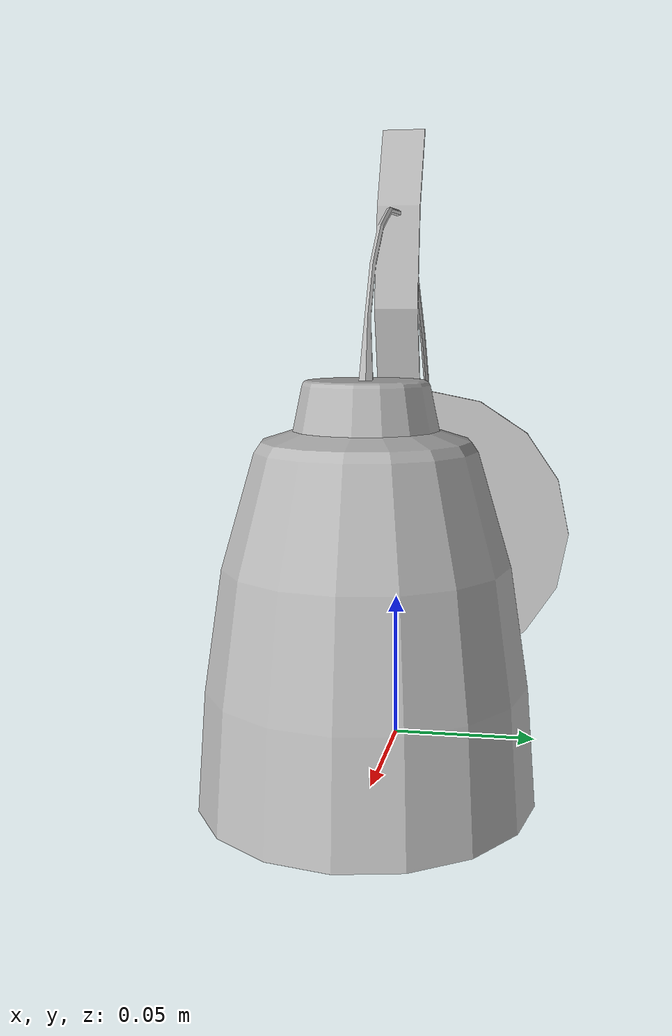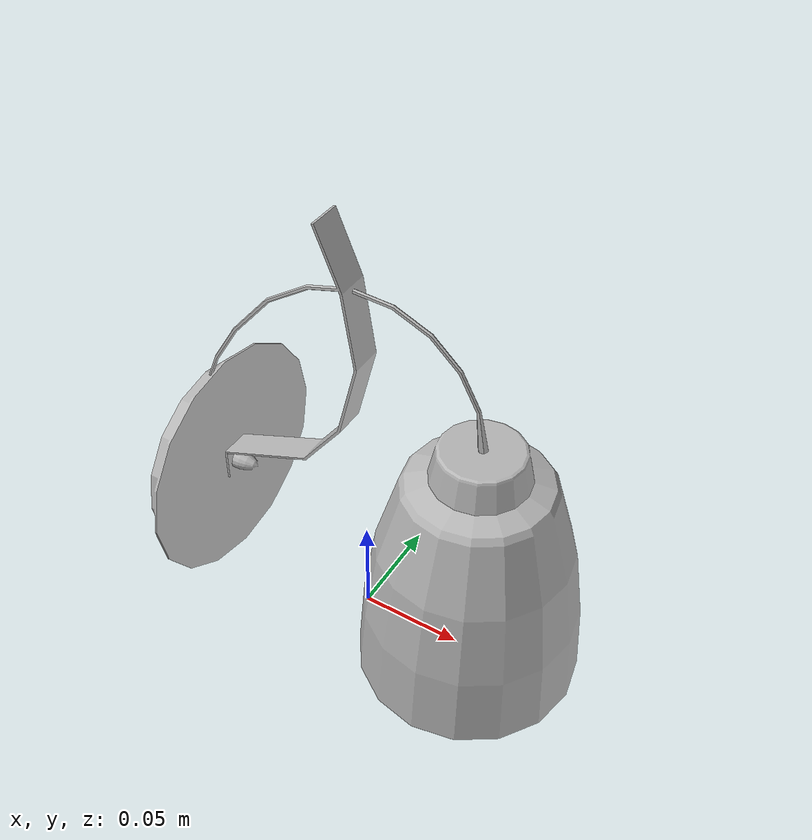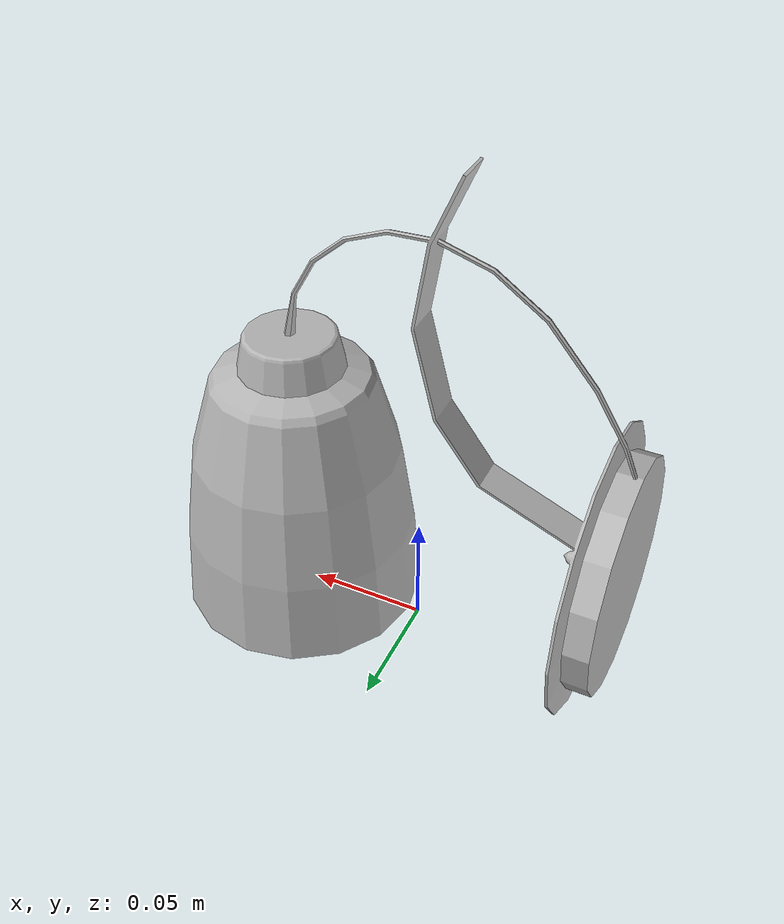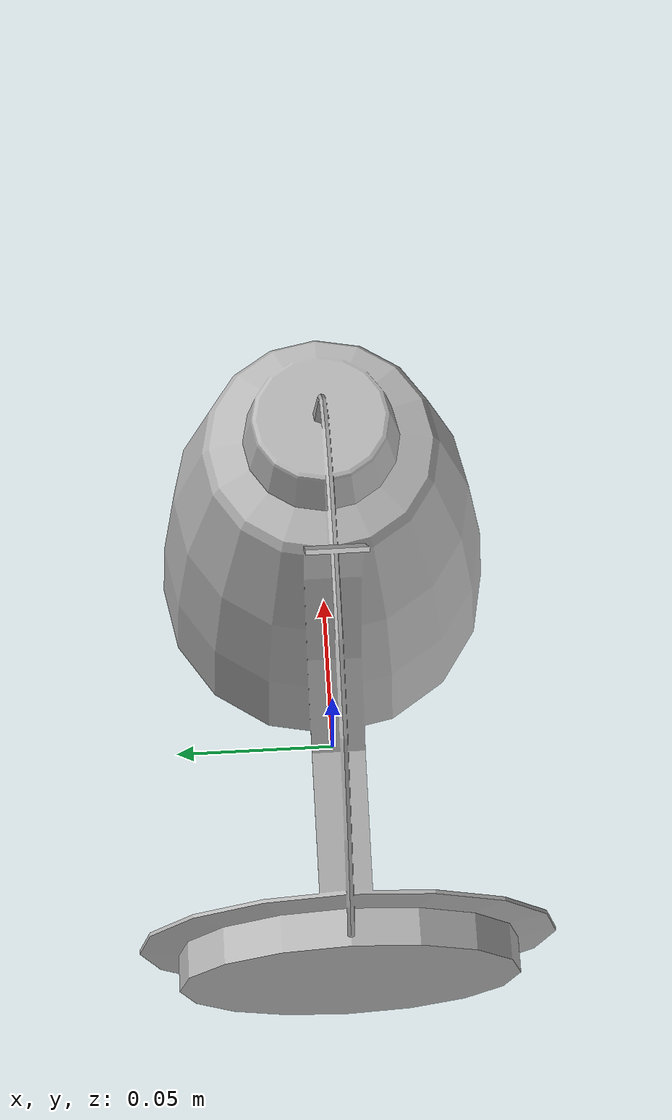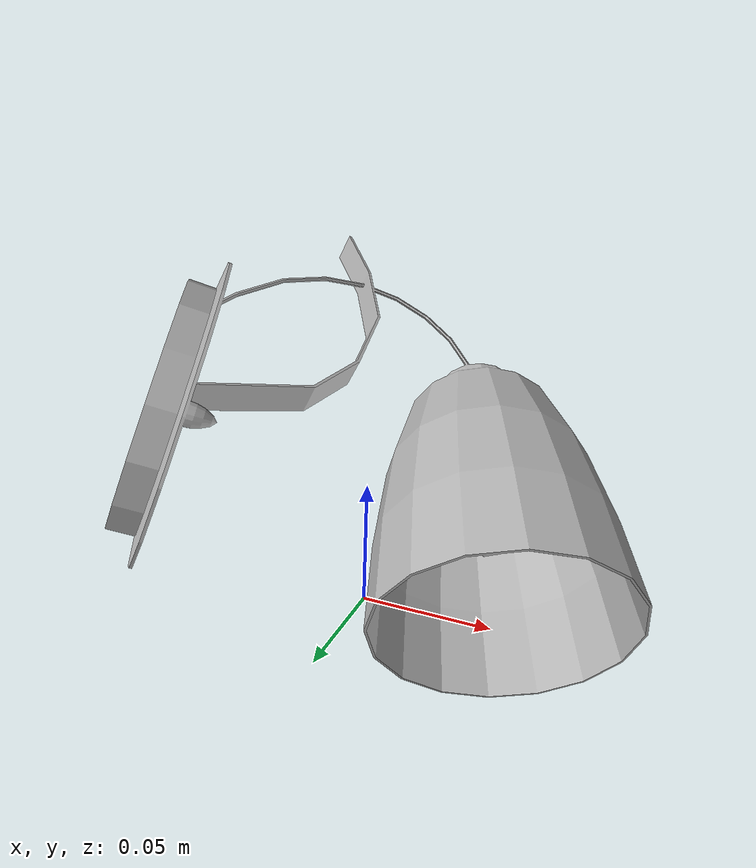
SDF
<?xml version='1.0'?>
<sdf version='1.4'>
  <model name='124'>
    <pose>0 0 0 0 0 0</pose>
    <static>true</static>
    <link name='link'>
      <collision name='collision'>
        <pose>0 0 0 0 0 0</pose>
        <geometry>
          <box>
            <size>0.197654 0.12 2</size>
          </box>
        </geometry>
      </collision>
      <visual name='visual'>
        <pose>0 0 0 0 0 0</pose>
        <geometry>
          <mesh><uri>model://124/124.dae</uri></mesh>
        </geometry>
      </visual>
    </link>
  </model>
</sdf>
